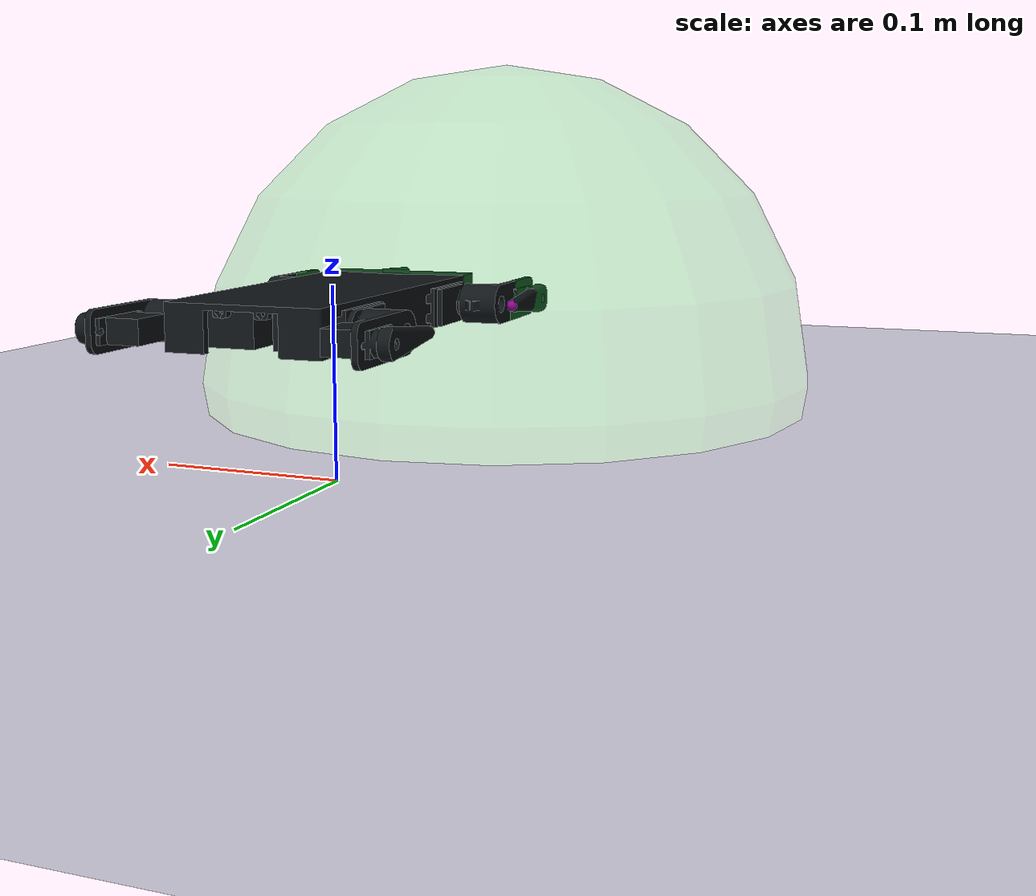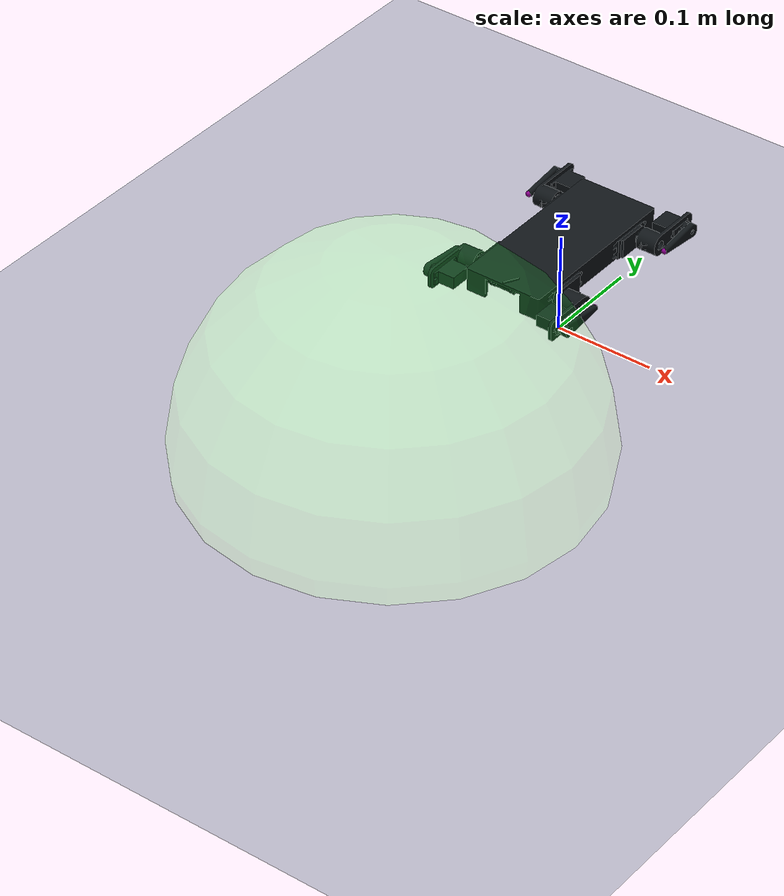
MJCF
<?xml version="1.0" encoding="utf-8"?>
<mujoco model="crank_bot_scene">

  <compiler angle="radian"
            meshdir="assets"
            inertiafromgeom="true"
            autolimits="true"/>

  <option gravity="0 0 -9.81" timestep="0.002"/>

 <include file="crank_bot.xml"/>

  <visual>
    <quality shadowsize="2048"/>
    <map znear="0.001" zfar="50"/>
  </visual>

  <asset>
    <texture name="grid" type="2d" builtin="checker"
             rgb1="0.2 0.3 0.4" rgb2="0.1 0.2 0.3"
             width="512" height="512"/>

    <material name="grid_mat"
              texture="grid"
              texrepeat="20 20"
              reflectance="0.2"/>
  </asset>

  <worldbody>
    <light name="sun"
           pos="0 0 2.5"
           dir="0 0 -1"
           directional="true"
           diffuse="0.8 0.8 0.8"
           specular="0.2 0.2 0.2"/>

    <geom name="floor"
          type="plane"
          size="2 2 0.05"
          pos="0 0 0"
          material="grid_mat"
          friction="1 0.005 0.0001"/>

    <site name="goal_site"
          type="sphere"
          size="0.2"
          pos="0 -0.25 0.02"
          rgba="0.1 0.8 0.2 0.25"/>

    <camera name="overview"
            pos="0.35 -0.55 0.35"
            xyaxes="0.84 0.54 0 -0.25 0.39 0.89"/>
  </worldbody>

</mujoco>

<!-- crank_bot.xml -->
<mujoco model="crank_bot">
  <compiler angle="radian" meshdir="assets" inertiafromgeom="true" autolimits="true"/>
  <option timestep="0.002" gravity="0 0 -9.81"/>
  <asset>
    <material name="visual_black" rgba="0.0615686 0.0811765 0.0929412 1"/>
    <mesh name="base_mesh" file="base2b.stl" scale="0.001 0.001 0.001" inertia="shell"/>
    <mesh name="mg995_mesh" file="MG995.stl" scale="0.001 0.001 0.001" inertia="shell"/>
    <mesh name="mg90_mesh" file="mg90.stl" scale="0.001 0.001 0.001" inertia="shell"/>
    <mesh name="leg1_mesh" file="leg1.stl" scale="0.001 0.001 0.001" inertia="shell"/>
    <mesh name="leg2_mesh" file="leg2.stl" scale="0.001 0.001 0.001" inertia="shell"/>
  </asset>
  <worldbody>
    <body name="root" pos="0 0 0.1" euler="0 3.14159 0">
        <freejoint name="root_freejoint"/>
        <body name="base" pos="0.0 0.0 0.0">
            <geom name="base" type="mesh" mesh="base_mesh" material="visual_black" contype="0" conaffinity="0" group="1" density="0" pos="0 0 0"/>
            <geom name="base_collision" type="box" size="0.04 0.09 0.005" pos="0 0 0.005" contype="1" conaffinity="1" group="3" rgba="1 0 0 0.35" mass="0.05"/>
            <!-- LEG FRONT LEFT   -->
            <body name="servo1" pos="0.015 -0.05 0.013" euler="0 -1.5708 1.5708">
                <geom name="front_left_shoulder_geom" type="mesh" mesh="mg995_mesh" material="visual_black" contype="0" conaffinity="0" group="1" density="0" pos="0.0 0.0 0.02"/>
                <geom name="front_left_shoulder_collision" type="sphere" size="0.005" pos="0.0 0.0 0.02" contype="1" conaffinity="1" group="3" rgba="1 0 0 0.35" mass="0.055"/>
                <body name="front_left_leg" pos="-0.01 -0.0 0.0825" euler="0 3.14159 0">
                    <joint name="front_left_shoulder_joint" type="hinge" pos="0 0 0" axis="0 0 1" limited="true" range="-180 0" damping="0.15" frictionloss="0.05" armature="0.0005"/>
                    <geom name="front_left_leg_geom" type="mesh" mesh="leg1_mesh" material="visual_black" contype="0" conaffinity="0" group="1" density="0" pos="0.0075 0.0 0.0"/>
                    <geom name="front_left_leg_collision" type="capsule" size="0.01 0.022" pos="0.02 0.0 0.01" euler="0 1.5708 0" contype="1" conaffinity="1" group="3" rgba="1 0 0 0.35" mass="0.005"/>
                    <body name="front_left_knee" pos="0.03 0.0 0.022" euler="0 3.14159 1.5708">
                        <geom name="front_left_eblow_servo_geom" type="mesh" mesh="mg90_mesh" material="visual_black" contype="0" conaffinity="0" group="1" density="0" pos="0.0 0.0 0.0"/>
                        <geom name="front_left_elbow_servo_collision" type="sphere" size="0.005" pos="0.0 0.0 0.0" contype="1" conaffinity="1" group="3" rgba="1 0 0 0.35" mass="0.0134"/>
                        <body name="front_left_lower_leg" pos="0.00 0.005 0.027" euler="0 0 0">
                            <joint name="front_left_elbow_joint" type="hinge" pos="0.0 0.0 0.0" axis="0 0 1" limited="true" range="-180 0" damping="0.08" frictionloss="0.02" armature="0.0002"/>
                            <geom name="front_left_lower_leg_geom" type="mesh" mesh="leg2_mesh" material="visual_black" contype="0" conaffinity="0" group="1" density="0" pos="0.0 0.0 0.0"/>
                            <geom name="front_left_lower_leg_collision" type="capsule" size="0.0035 0.022" pos="0.0 -0.017 0.003" euler="1.5708 0 0" contype="1" conaffinity="1" group="3" rgba="1 0 0 0.35" mass="0.005"/>
                            <geom name="front_left_lower_leg_foot" type="sphere" size="0.003" pos="0.0 -0.04 0.003" contype="1" conaffinity="1" group="1" rgba="1 0 1 0.55" mass="0.0"/>
                        </body>
                    </body>
                </body>
            </body>
            <!-- LEG FRONT RIGHT   -->
            <body name="servo2" pos="-0.015 -0.05 0.013" euler="0 1.5708 1.5708">
                <geom name="front_right_shoulder_geom" type="mesh" mesh="mg995_mesh" material="visual_black" contype="0" conaffinity="0" group="1" density="0" pos="0.0 0.0 0.02"/>
                <geom name="front_right_shoulder_collision" type="sphere" size="0.005" pos="0.0 0.0 0.02" contype="1" conaffinity="1" group="3" rgba="1 0 0 0.35" mass="0.055"/>
                <body name="front_right_leg" pos="-0.01 -0.0 0.0825" euler="0 3.14159 0">
                    <joint name="front_right_shoulder_joint" type="hinge" pos="0 0 0" axis="0 0 1" limited="true" range="0 180" damping="0.15" frictionloss="0.05" armature="0.0005"/>
                    <geom name="front_right_leg_geom" type="mesh" mesh="leg1_mesh" material="visual_black" contype="0" conaffinity="0" group="1" density="0" pos="0.0075 0.0 0.0"/>
                    <geom name="front_right_leg_collision" type="capsule" size="0.01 0.022" pos="0.02 0.0 0.01" euler="0 1.5708 0" group="3" rgba="1 0 0 0.35" contype="1" conaffinity="1" mass="0.005"/>

                    <body name="front_right_knee" pos="0.03 0.0 0.022" euler="0 3.14159 1.5708">
                        <geom name="front_right_eblow_servo_geom" type="mesh" mesh="mg90_mesh" material="visual_black" contype="0" conaffinity="0" group="1" density="0" pos="0.0 0.0 0.0"/>
                        <geom name="front_right_elbow_servo_collision" type="sphere" size="0.005" pos="0.0 0.0 0.0" contype="1" conaffinity="1" group="3" rgba="1 0 0 0.35" mass="0.0134"/>

                        <body name="front_right_lower_leg" pos="0.00 0.005 0.027" euler="0 0 0">
                            <joint name="front_right_elbow_joint" type="hinge" pos="0.0 0.0 0.0" axis="0 0 1" limited="true" range="0 180" damping="0.08" frictionloss="0.02" armature="0.0002"/>
                            <geom name="front_right_lower_leg_geom" type="mesh" mesh="leg2_mesh" material="visual_black" contype="0" conaffinity="0" group="1" density="0" pos="0.0 0.0 0.0"/>
                            <geom name="front_right_lower_leg_collision" type="capsule" size="0.0035 0.022" pos="0.0 -0.017 0.003" euler="1.5708 0 0" contype="1" conaffinity="1" group="3" rgba="1 0 0 0.35" mass="0.005"/>
                            <geom name="front_right_lower_leg_foot" type="sphere" size="0.003" pos="0.0 -0.04 0.003" contype="1" conaffinity="1" group="1" rgba="1 0 1 0.55" mass="0.0"/>
                        </body>
                    </body>
                </body>
            </body>
            <!-- LEG BACK LEFT   -->
             <body name="servo3" pos="0.015 0.05 0.013" euler="0 -1.5708 -1.5708">
                <geom name="back_left_shoulder_geom" type="mesh" mesh="mg995_mesh" material="visual_black" contype="0" conaffinity="0" group="1" density="0" pos="0.0 0.0 0.02"/>
                <geom name="back_left_shoulder_collision" type="sphere" size="0.005" pos="0.0 0.0 0.02" contype="1" conaffinity="1" group="3" rgba="1 0 0 0.35" mass="0.055"/>
                <body name="back_left_leg" pos="-0.01 -0.0 0.0825" euler="0 3.14159 0">
                    <joint name="back_left_shoulder_joint" type="hinge" pos="0 0 0" axis="0 0 1" limited="true" range="0 180" damping="0.15" frictionloss="0.05" armature="0.0005"/>
                    <geom name="back_left_leg_geom" type="mesh" mesh="leg1_mesh" material="visual_black" contype="0" conaffinity="0" group="1" density="0" pos="0.0075 0.0 0.0"/>
                    <geom name="back_left_leg_collision" type="capsule" size="0.01 0.022" pos="0.02 0.0 0.01" euler="0 1.5708 0" contype="1" conaffinity="1" group="3" rgba="1 0 0 0.35" mass="0.005"/>

                    <body name="back_left_knee" pos="0.03 0.0 0.022" euler="0 3.14159 1.5708">
                        <geom name="back_left_eblow_servo_geom" type="mesh" mesh="mg90_mesh" material="visual_black" contype="0" conaffinity="0" group="1" density="0" pos="0.0 0.0 0.0"/>
                        <geom name="back_left_elbow_servo_collision" type="sphere" size="0.005" pos="0.0 0.0 0.0" contype="1" conaffinity="1" group="3" rgba="1 0 0 0.35" mass="0.0134"/>
                        <body name="back_left_lower_leg" pos="0.00 0.005 0.027" euler="0 0 0">
                            <joint name="back_left_elbow_joint" type="hinge" pos="0.0 0.0 0.0" axis="0 0 1" limited="true" range="-180 0" damping="0.08" frictionloss="0.02" armature="0.0002"/>
                            <geom name="back_left_lower_leg_geom" type="mesh" mesh="leg2_mesh" material="visual_black" contype="0" conaffinity="0" group="1" density="0" pos="0.0 0.0 0.0"/>
                            <geom name="back_left_lower_leg_collision" type="capsule" size="0.0035 0.022" pos="0.0 -0.017 0.003" euler="1.5708 0 0" contype="1" conaffinity="1" group="3" rgba="1 0 0 0.35" mass="0.005"/>
                            <geom name="back_left_lower_leg_foot" type="sphere" size="0.003" pos="0.0 -0.04 0.003" contype="1" conaffinity="1" group="1" rgba="1 0 1 0.55" mass="0.0"/>
                        </body>
                    </body>
                </body>
            </body>
            <!-- LEG BACK RIGHT   -->
            <body name="servo4" pos="-0.015 0.05 0.013" euler="0 1.5708 -1.5708">
                <geom name="back_right_shoulder_geom" type="mesh" mesh="mg995_mesh" material="visual_black" contype="0" conaffinity="0" group="1" density="0" pos="0.0 0.0 0.02"/>
                <geom name="back_right_shoulder_collision" type="sphere" size="0.005" pos="0.0 0.0 0.02" contype="1" conaffinity="1" group="3" rgba="1 0 0 0.35" mass="0.055"/>
                <body name="back_right_leg" pos="-0.01 -0.0 0.0825" euler="0 3.14159 0">
                    <joint name="back_right_shoulder_joint" type="hinge" pos="0 0 0" axis="0 0 1" limited="true" range="-180 0" damping="0.15" frictionloss="0.05" armature="0.0005"/>
                    <geom name="back_right_leg_geom" type="mesh" mesh="leg1_mesh" material="visual_black" contype="0" conaffinity="0" group="1" density="0" pos="0.0075 0.0 0.0"/>
                    <geom name="back_right_leg_collision" type="capsule" size="0.01 0.022" pos="0.02 0.0 0.01" euler="0 1.5708 0" contype="1" conaffinity="1" group="3" rgba="1 0 0 0.35" mass="0.005"/>

                    <body name="back_right_knee" pos="0.03 0.0 0.022" euler="0 3.14159 1.5708">
                        <geom name="back_right_eblow_servo_geom" type="mesh" mesh="mg90_mesh" material="visual_black" contype="0" conaffinity="0" group="1" density="0" pos="0 0 0"/>
                        <geom name="back_right_elbow_servo_collision" type="sphere" size="0.005" pos="0 0 0" contype="1" conaffinity="1" group="3" rgba="1 0 0 0.35" mass="0.0134"/>
                        <body name="back_right_lower_leg" pos="0.00 0.005 0.027" euler="0 0 0">
                            <joint name="back_right_elbow_joint" type="hinge" pos="0.0 0.0 0.0" axis="0 0 1" limited="true" range="0 180" damping="0.08" frictionloss="0.02" armature="0.0002"/>
                            <geom name="back_right_lower_leg_geom" type="mesh" mesh="leg2_mesh" material="visual_black" contype="0" conaffinity="0" group="1" density="0" pos="0.0 0.0 0.0"/>
                            <geom name="back_right_lower_leg_collision" type="capsule" size="0.0035 0.022" pos="0.0 -0.017 0.003" euler="1.5708 0 0" contype="1" conaffinity="1" group="3" rgba="1 0 0 0.35" mass="0.005"/>
                            <geom name="back_right_lower_leg_foot" type="sphere" size="0.003" pos="0.0 -0.04 0.003" contype="1" conaffinity="1" group="1" rgba="1 0 1 0.55" mass="0.0"/>
                        </body>
                    </body>
                </body>
            </body>
        </body>
    </body>
</worldbody>

<contact>
    <exclude body1="servo1" body2="front_left_leg"/>
    <exclude body1="front_left_leg" body2="front_left_knee"/>
    <exclude body1="front_left_knee" body2="front_left_lower_leg"/>
    <exclude body1="servo2" body2="front_right_leg"/>
    <exclude body1="front_right_leg" body2="front_right_knee"/>
    <exclude body1="front_right_knee" body2="front_right_lower_leg"/>
    <exclude body1="servo3" body2="back_left_leg"/>
    <exclude body1="back_left_leg" body2="back_left_knee"/>
    <exclude body1="back_left_knee" body2="back_left_lower_leg"/>
    <exclude body1="servo4" body2="back_right_leg"/>
    <exclude body1="back_right_leg" body2="back_right_knee"/>
    <exclude body1="back_right_knee" body2="back_right_lower_leg"/>
</contact>

<actuator>
    <position name="front_left_shoulder_pos" joint="front_left_shoulder_joint" kp="8" kv="0.4" ctrlrange="-3.14159 0.0" forcerange="-1.2 1.2"/>
    <position name="front_left_elbow_pos" joint="front_left_elbow_joint" kp="3" kv="0.15" ctrlrange="-3.14159 0.0" forcerange="-0.25 0.25"/>
    <position name="front_right_shoulder_pos" joint="front_right_shoulder_joint" kp="8" kv="0.4" ctrlrange="0.0 3.14159" forcerange="-1.2 1.2"/>
    <position name="front_right_elbow_pos" joint="front_right_elbow_joint" kp="3" kv="0.15" ctrlrange="0.0 3.14159" forcerange="-0.25 0.25"/>
    <position name="back_left_shoulder_pos" joint="back_left_shoulder_joint" kp="8" kv="0.4" ctrlrange="0.0 3.14159" forcerange="-1.2 1.2"/>
    <position name="back_left_elbow_pos" joint="back_left_elbow_joint" kp="3" kv="0.15" ctrlrange="-3.14159 0.0" forcerange="-0.25 0.25"/>
    <position name="back_right_shoulder_pos" joint="back_right_shoulder_joint" kp="8" kv="0.4" ctrlrange="-3.14159 0.0" forcerange="-1.2 1.2"/>
    <position name="back_right_elbow_pos" joint="back_right_elbow_joint" kp="3" kv="0.15" ctrlrange="0.0 3.14159" forcerange="-0.25 0.25"/>
</actuator>

</mujoco>
